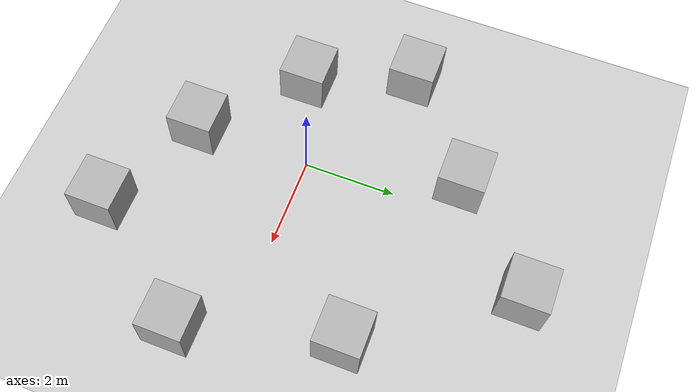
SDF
<sdf version='1.10'>
  <world name='empty'>
    <physics name='1ms' type='ignored'>
      <max_step_size>0.001</max_step_size>
      <real_time_factor>1</real_time_factor>
      <real_time_update_rate>1000</real_time_update_rate>
    </physics>
    <plugin name='gz::sim::systems::Physics' filename='gz-sim-physics-system'/>
    <plugin name='gz::sim::systems::UserCommands' filename='gz-sim-user-commands-system'/>
    <plugin name='gz::sim::systems::SceneBroadcaster' filename='gz-sim-scene-broadcaster-system'/>
    <plugin name='gz::sim::systems::Contact' filename='gz-sim-contact-system'/>
    <gravity>0 0 -9.8000000000000007</gravity>
    <magnetic_field>5.5644999999999998e-06 2.2875799999999999e-05 -4.2388400000000002e-05</magnetic_field>
    <atmosphere type='adiabatic'/>
    <scene>
      <ambient>0.400000006 0.400000006 0.400000006 1</ambient>
      <background>0.699999988 0.699999988 0.699999988 1</background>
      <shadows>true</shadows>
    </scene>
    <model name='ground_plane'>
      <static>true</static>
      <link name='link'>
        <collision name='collision'>
          <geometry>
            <plane>
              <normal>0 0 1</normal>
              <size>100 100</size>
            </plane>
          </geometry>
          <surface>
            <friction>
              <ode/>
            </friction>
            <bounce/>
            <contact/>
          </surface>
        </collision>
        <visual name='visual'>
          <geometry>
            <plane>
              <normal>0 0 1</normal>
              <size>100 100</size>
            </plane>
          </geometry>
          <material>
            <ambient>0.800000012 0.800000012 0.800000012 1</ambient>
            <diffuse>0.800000012 0.800000012 0.800000012 1</diffuse>
            <specular>0.800000012 0.800000012 0.800000012 1</specular>
          </material>
        </visual>
        <pose>0 0 -0.5 0 0 0</pose>
        <inertial>
          <pose>0 0 0 0 0 0</pose>
          <mass>1</mass>
          <inertia>
            <ixx>1</ixx>
            <ixy>0</ixy>
            <ixz>0</ixz>
            <iyy>1</iyy>
            <iyz>0</iyz>
            <izz>1</izz>
          </inertia>
        </inertial>
        <enable_wind>false</enable_wind>
      </link>
      <pose>0 -0.5 0 0 0 0</pose>
      <self_collide>false</self_collide>
    </model>
    <model name='box'>
      <pose>2.4367642878916786 -3.6625631920727977 0.5 0 0 0</pose>
      <link name='box_link'>
        <inertial>
          <inertia>
            <ixx>0.16666</ixx>
            <ixy>0</ixy>
            <ixz>0</ixz>
            <iyy>0.16666</iyy>
            <iyz>0</iyz>
            <izz>0.16666</izz>
          </inertia>
          <mass>1</mass>
          <pose>0 0 0 0 0 0</pose>
        </inertial>
        <collision name='box_collision'>
          <geometry>
            <box>
              <size>1 1 1</size>
            </box>
          </geometry>
          <surface>
            <friction>
              <ode/>
            </friction>
            <bounce/>
            <contact/>
          </surface>
        </collision>
        <visual name='box_visual'>
          <geometry>
            <box>
              <size>1 1 1</size>
            </box>
          </geometry>
          <material>
            <ambient>0.300000012 0.300000012 0.300000012 1</ambient>
            <diffuse>0.699999988 0.699999988 0.699999988 1</diffuse>
            <specular>1 1 1 1</specular>
          </material>
        </visual>
        <pose>0 0 0 0 0 0</pose>
        <enable_wind>false</enable_wind>
      </link>
      <static>false</static>
      <self_collide>false</self_collide>
    </model>
    <model name='box_0'>
      <pose>-2.8881060455813454 1.5151445993873456 0.5 0 0 0</pose>
      <link name='box_link'>
        <inertial>
          <inertia>
            <ixx>0.16666</ixx>
            <ixy>0</ixy>
            <ixz>0</ixz>
            <iyy>0.16666</iyy>
            <iyz>0</iyz>
            <izz>0.16666</izz>
          </inertia>
          <mass>1</mass>
          <pose>0 0 0 0 0 0</pose>
        </inertial>
        <collision name='box_collision'>
          <geometry>
            <box>
              <size>1 1 1</size>
            </box>
          </geometry>
          <surface>
            <friction>
              <ode/>
            </friction>
            <bounce/>
            <contact/>
          </surface>
        </collision>
        <visual name='box_visual'>
          <geometry>
            <box>
              <size>1 1 1</size>
            </box>
          </geometry>
          <material>
            <ambient>0.300000012 0.300000012 0.300000012 1</ambient>
            <diffuse>0.699999988 0.699999988 0.699999988 1</diffuse>
            <specular>1 1 1 1</specular>
          </material>
        </visual>
        <pose>0 0 0 0 0 0</pose>
        <enable_wind>false</enable_wind>
      </link>
      <static>false</static>
      <self_collide>false</self_collide>
    </model>
    <model name='box_1'>
      <pose>3.4949229104574844 2.1413828444610248 0.5 0 0 0</pose>
      <link name='box_link'>
        <inertial>
          <inertia>
            <ixx>0.16666</ixx>
            <ixy>0</ixy>
            <ixz>0</ixz>
            <iyy>0.16666</iyy>
            <iyz>0</iyz>
            <izz>0.16666</izz>
          </inertia>
          <mass>1</mass>
          <pose>0 0 0 0 0 0</pose>
        </inertial>
        <collision name='box_collision'>
          <geometry>
            <box>
              <size>1 1 1</size>
            </box>
          </geometry>
          <surface>
            <friction>
              <ode/>
            </friction>
            <bounce/>
            <contact/>
          </surface>
        </collision>
        <visual name='box_visual'>
          <geometry>
            <box>
              <size>1 1 1</size>
            </box>
          </geometry>
          <material>
            <ambient>0.300000012 0.300000012 0.300000012 1</ambient>
            <diffuse>0.699999988 0.699999988 0.699999988 1</diffuse>
            <specular>1 1 1 1</specular>
          </material>
        </visual>
        <pose>0 0 0 0 0 0</pose>
        <enable_wind>false</enable_wind>
      </link>
      <static>false</static>
      <self_collide>false</self_collide>
    </model>
    <model name='box_2'>
      <pose>-0.71119631784478532 3.3252623111230264 0.5 0 0 0</pose>
      <link name='box_link'>
        <inertial>
          <inertia>
            <ixx>0.16666</ixx>
            <ixy>0</ixy>
            <ixz>0</ixz>
            <iyy>0.16666</iyy>
            <iyz>0</iyz>
            <izz>0.16666</izz>
          </inertia>
          <mass>1</mass>
          <pose>0 0 0 0 0 0</pose>
        </inertial>
        <collision name='box_collision'>
          <geometry>
            <box>
              <size>1 1 1</size>
            </box>
          </geometry>
          <surface>
            <friction>
              <ode/>
            </friction>
            <bounce/>
            <contact/>
          </surface>
        </collision>
        <visual name='box_visual'>
          <geometry>
            <box>
              <size>1 1 1</size>
            </box>
          </geometry>
          <material>
            <ambient>0.300000012 0.300000012 0.300000012 1</ambient>
            <diffuse>0.699999988 0.699999988 0.699999988 1</diffuse>
            <specular>1 1 1 1</specular>
          </material>
        </visual>
        <pose>0 0 0 0 0 0</pose>
        <enable_wind>false</enable_wind>
      </link>
      <static>false</static>
      <self_collide>false</self_collide>
    </model>
    <model name='box_3'>
      <pose>0.026868835129471691 -2.5156298137712718 0.5 0 0 0</pose>
      <link name='box_link'>
        <inertial>
          <inertia>
            <ixx>0.16666</ixx>
            <ixy>0</ixy>
            <ixz>0</ixz>
            <iyy>0.16666</iyy>
            <iyz>0</iyz>
            <izz>0.16666</izz>
          </inertia>
          <mass>1</mass>
          <pose>0 0 0 0 0 0</pose>
        </inertial>
        <collision name='box_collision'>
          <geometry>
            <box>
              <size>1 1 1</size>
            </box>
          </geometry>
          <surface>
            <friction>
              <ode/>
            </friction>
            <bounce/>
            <contact/>
          </surface>
        </collision>
        <visual name='box_visual'>
          <geometry>
            <box>
              <size>1 1 1</size>
            </box>
          </geometry>
          <material>
            <ambient>0.300000012 0.300000012 0.300000012 1</ambient>
            <diffuse>0.699999988 0.699999988 0.699999988 1</diffuse>
            <specular>1 1 1 1</specular>
          </material>
        </visual>
        <pose>0 0 0 0 0 0</pose>
        <enable_wind>false</enable_wind>
      </link>
      <static>false</static>
      <self_collide>false</self_collide>
    </model>
    <model name='box_4'>
      <pose>4.4217470543830473 -1.1380938246600374 0.5 0 0 0</pose>
      <link name='box_link'>
        <inertial>
          <inertia>
            <ixx>0.16666</ixx>
            <ixy>0</ixy>
            <ixz>0</ixz>
            <iyy>0.16666</iyy>
            <iyz>0</iyz>
            <izz>0.16666</izz>
          </inertia>
          <mass>1</mass>
          <pose>0 0 0 0 0 0</pose>
        </inertial>
        <collision name='box_collision'>
          <geometry>
            <box>
              <size>1 1 1</size>
            </box>
          </geometry>
          <surface>
            <friction>
              <ode/>
            </friction>
            <bounce/>
            <contact/>
          </surface>
        </collision>
        <visual name='box_visual'>
          <geometry>
            <box>
              <size>1 1 1</size>
            </box>
          </geometry>
          <material>
            <ambient>0.300000012 0.300000012 0.300000012 1</ambient>
            <diffuse>0.699999988 0.699999988 0.699999988 1</diffuse>
            <specular>1 1 1 1</specular>
          </material>
        </visual>
        <pose>0 0 0 0 0 0</pose>
        <enable_wind>false</enable_wind>
      </link>
      <static>false</static>
      <self_collide>false</self_collide>
    </model>
    <model name='box_5'>
      <pose>-1.9818862966078568 -0.71623989222130746 0.5 0 0 0</pose>
      <link name='box_link'>
        <inertial>
          <inertia>
            <ixx>0.16666</ixx>
            <ixy>0</ixy>
            <ixz>0</ixz>
            <iyy>0.16666</iyy>
            <iyz>0</iyz>
            <izz>0.16666</izz>
          </inertia>
          <mass>1</mass>
          <pose>0 0 0 0 0 0</pose>
        </inertial>
        <collision name='box_collision'>
          <geometry>
            <box>
              <size>1 1 1</size>
            </box>
          </geometry>
          <surface>
            <friction>
              <ode/>
            </friction>
            <bounce/>
            <contact/>
          </surface>
        </collision>
        <visual name='box_visual'>
          <geometry>
            <box>
              <size>1 1 1</size>
            </box>
          </geometry>
          <material>
            <ambient>0.300000012 0.300000012 0.300000012 1</ambient>
            <diffuse>0.699999988 0.699999988 0.699999988 1</diffuse>
            <specular>1 1 1 1</specular>
          </material>
        </visual>
        <pose>0 0 0 0 0 0</pose>
        <enable_wind>false</enable_wind>
      </link>
      <static>false</static>
      <self_collide>false</self_collide>
    </model>
    <model name='box_6'>
      <pose>1.3375294395722301 5.2430646067723545 0.5 0 0 0</pose>
      <link name='box_link'>
        <inertial>
          <inertia>
            <ixx>0.16666</ixx>
            <ixy>0</ixy>
            <ixz>0</ixz>
            <iyy>0.16666</iyy>
            <iyz>0</iyz>
            <izz>0.16666</izz>
          </inertia>
          <mass>1</mass>
          <pose>0 0 0 0 0 0</pose>
        </inertial>
        <collision name='box_collision'>
          <geometry>
            <box>
              <size>1 1 1</size>
            </box>
          </geometry>
          <surface>
            <friction>
              <ode/>
            </friction>
            <bounce/>
            <contact/>
          </surface>
        </collision>
        <visual name='box_visual'>
          <geometry>
            <box>
              <size>1 1 1</size>
            </box>
          </geometry>
          <material>
            <ambient>0.300000012 0.300000012 0.300000012 1</ambient>
            <diffuse>0.699999988 0.699999988 0.699999988 1</diffuse>
            <specular>1 1 1 1</specular>
          </material>
        </visual>
        <pose>0 0 0 0 0 0</pose>
        <enable_wind>false</enable_wind>
      </link>
      <static>false</static>
      <self_collide>false</self_collide>
    </model>
    <light name='sun' type='directional'>
      <pose>0 0 10 0 0 0</pose>
      <cast_shadows>true</cast_shadows>
      <intensity>1</intensity>
      <direction>-0.5 0.10000000000000001 -0.90000000000000002</direction>
      <diffuse>0.800000012 0.800000012 0.800000012 1</diffuse>
      <specular>0.200000003 0.200000003 0.200000003 1</specular>
      <attenuation>
        <range>1000</range>
        <linear>0.01</linear>
        <constant>0.90000000000000002</constant>
        <quadratic>0.001</quadratic>
      </attenuation>
      <spot>
        <inner_angle>0</inner_angle>
        <outer_angle>0</outer_angle>
        <falloff>0</falloff>
      </spot>
    </light>
  </world>
</sdf>
